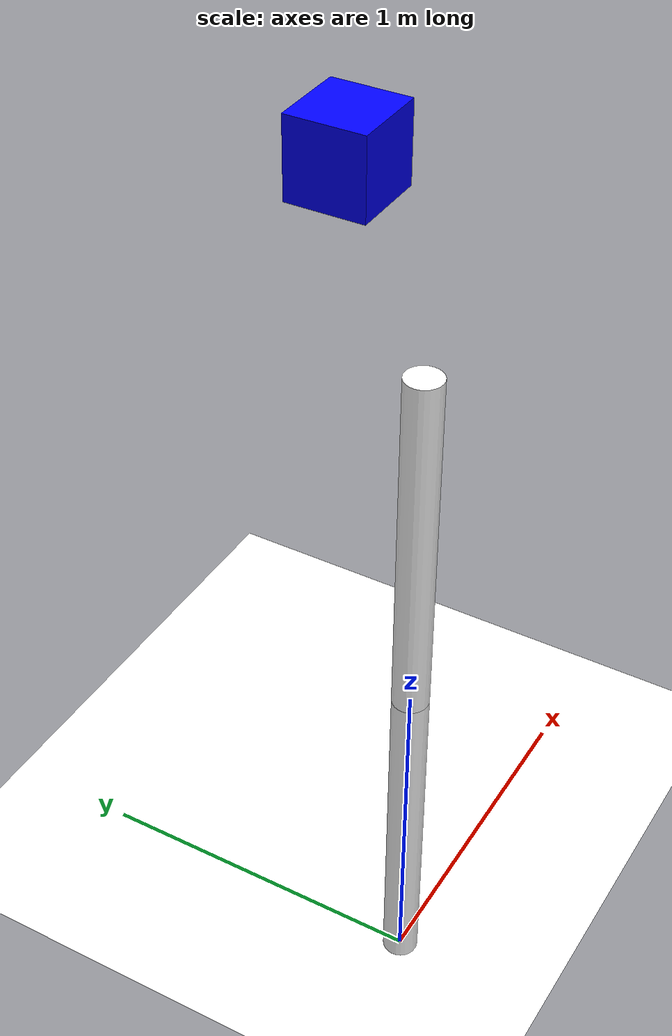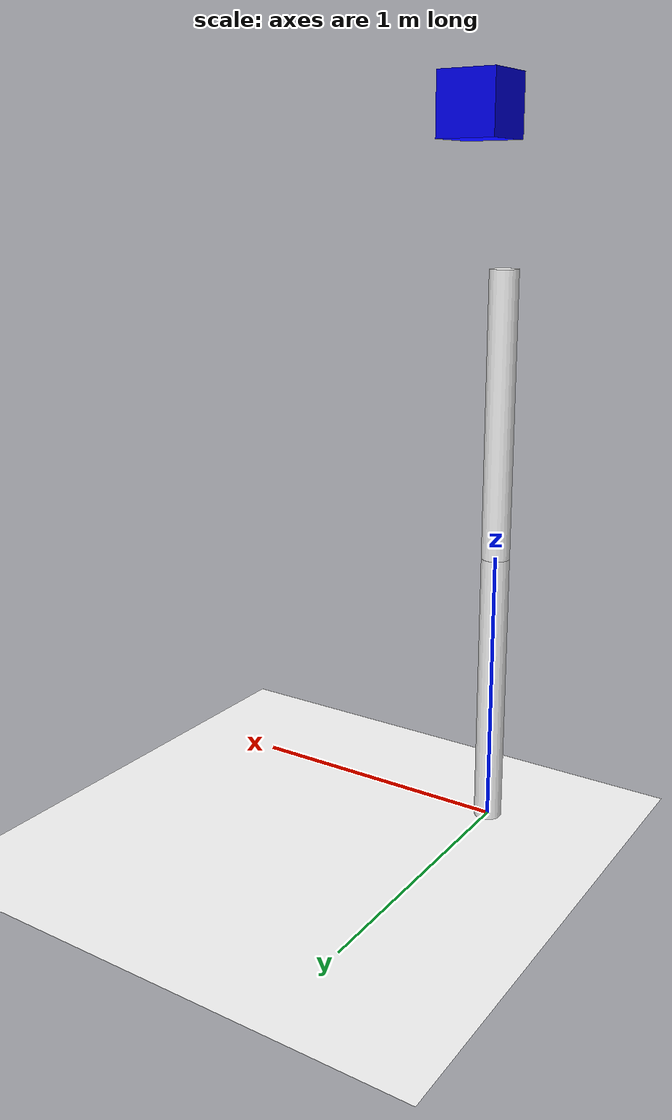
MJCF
<mujoco>
  <option gravity="0 0 -9.81" />
  <option timestep="0.001" />

  <worldbody>
    <light diffuse="0.5 0.5 0.5" pos="0 0 10" dir="0 0 -1"/>
    <geom type="plane" size="5 5 0.1" rgba="1 1 1 1"/>

    <!-- First Cylinder Body of 2R Manipulator -->
    <body pos="0 0 0.5">
      <joint name="joint1" type="hinge" axis="-1 0 0" stiffness="0.1" damping="0.05" range="-pi/2 pi/2" pos="0 0 -0.5"/>
      <geom type="cylinder" size="0.05 0.5" rgba="1 1 1 1" name="geom1"
            solref="0.002 1" solimp="0.99 0.99 0.001" friction="1 0.5 0.5" margin="0.005"/>
      <inertial pos="0 0 0" mass="0.001" diaginertia="0.00000125 0.00000125 0.0000025"/>

      <!-- Second Cylinder Body of 2R Manipulator -->
      <body pos="0 0 1">
        <joint name="joint2" type="hinge" axis="-1 0 0" stiffness="0.1" damping="0.05" pos="0 0 -0.5"/>
        <geom type="cylinder" size="0.05 0.5" rgba="2 2 2 1" name="geom2"
              solref="0.002 1" solimp="0.99 0.99 0.001" friction="1 0.5 0.5" margin="0.005"/>
        <inertial pos="0 0 0" mass="0.001" diaginertia="0.00000125 0.00000125 0.0000025"/>
      </body>
    </body>

    <!-- Box Independent of the 2R Manipulator -->
    <body name="box_body" pos="0 0.2 2.5">
      <joint name="box" type="free"/>
      <geom type="box" size="0.1 0.1 0.1" rgba="0 0 1 1" name="box_geom"
            solref="0.002 1" solimp="0.99 0.99 0.001" friction="1 0.5 0.5" margin="0.005"/>
      <inertial pos="0 0 0" mass="0.1" diaginertia="0.0001 0.0001 0.0002"/>
    </body>
  </worldbody>

  <!-- Actuators to Apply Torques -->
  <actuator>
    <motor joint="joint1" ctrllimited="true" ctrlrange="-1 1"/>
    <motor joint="joint2" ctrllimited="true" ctrlrange="-1 1"/>
  </actuator>
</mujoco>
